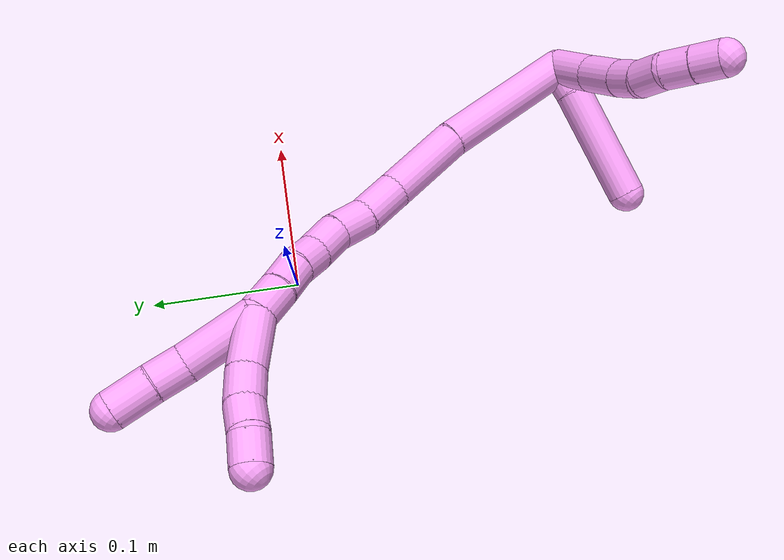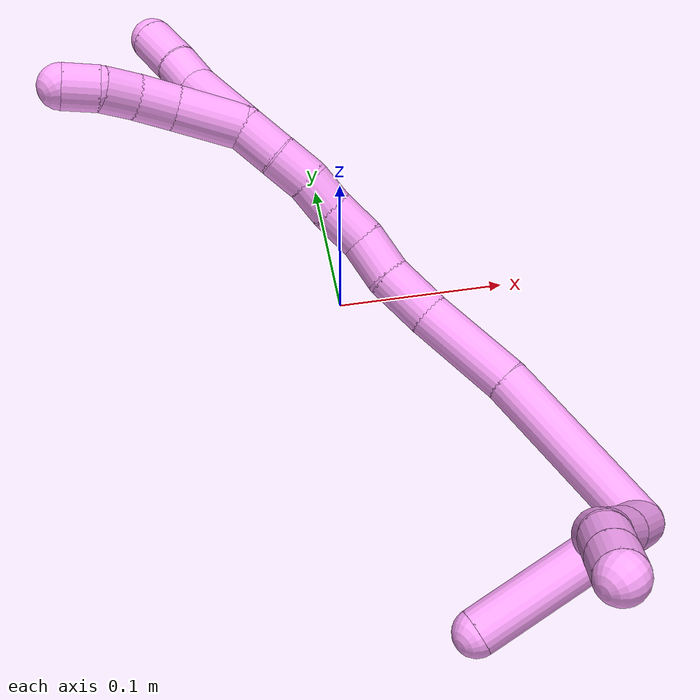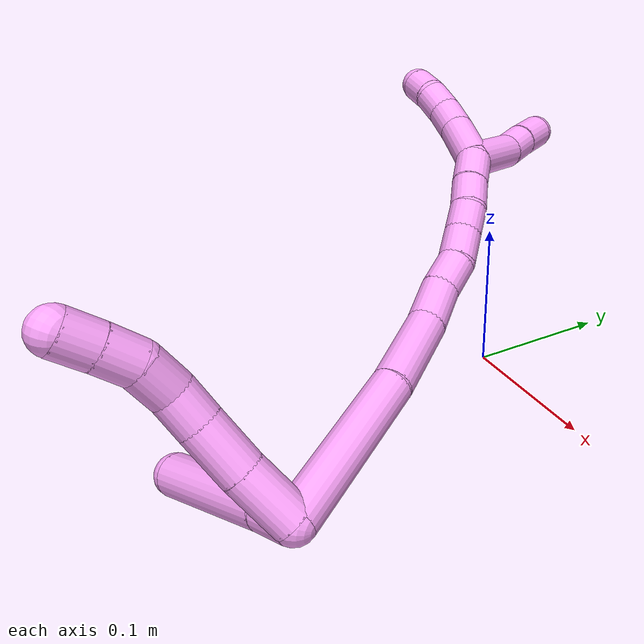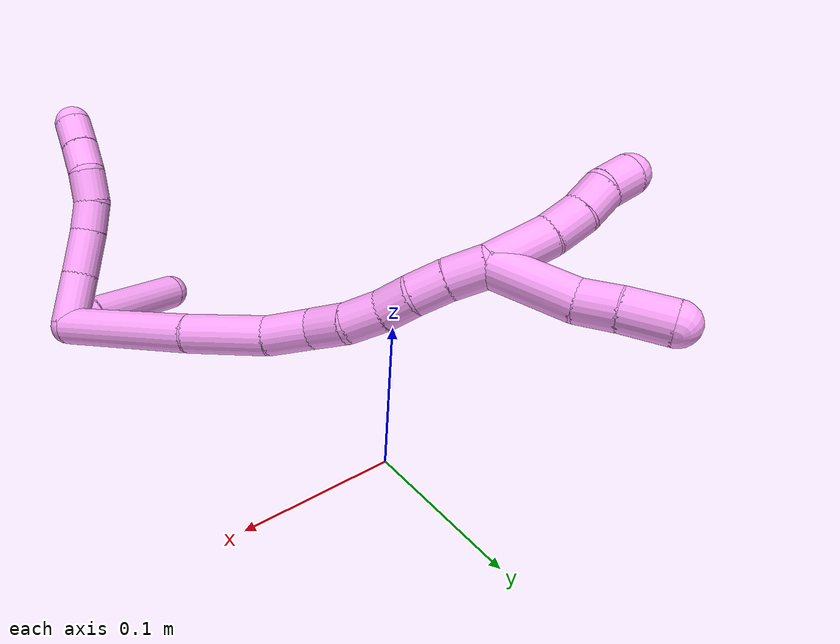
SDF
<sdf version="1.7">
 <world name="default">
  <model name="4">
   <static>0</static>
   <link name="4">
    <collision name="collision-cylinder-e_1_2_8">
     <pose>-0.007906 -0.008205 -0.013632 2.59979 -0.46118 -1.40352</pose>
     <geometry><cylinder><radius>0.0125</radius><length>0.035534</length></cylinder></geometry>
     <surface>
      <friction><ode><mu>1.16</mu><mu2>1.16</mu2><slip1>0</slip1><slip2>0</slip2></ode></friction>
      <contact><ode><kp>1e+06</kp><kd>1</kd><max_vel>0</max_vel><min_depth>0.001</min_depth></ode></contact>
     </surface>
    </collision>
    <visual name="visual-cylinder-e_1_2_8">
     <pose>-0.007906 -0.008205 -0.013632 2.59979 -0.46118 -1.40352</pose>
     <geometry><cylinder><radius>0.0125</radius><length>0.035534</length></cylinder></geometry>
     <material><ambient>1 0.65098 0.996078 1</ambient></material>
    </visual>
    <collision name="collision-cylinder-e_2_8_9">
     <pose>-0.023766 -0.023613 -0.038639 2.5771 -0.533567 -1.51155</pose>
     <geometry><cylinder><radius>0.0125</radius><length>0.031276</length></cylinder></geometry>
     <surface>
      <friction><ode><mu>1.16</mu><mu2>1.16</mu2><slip1>0</slip1><slip2>0</slip2></ode></friction>
      <contact><ode><kp>1e+06</kp><kd>1</kd><max_vel>0</max_vel><min_depth>0.001</min_depth></ode></contact>
     </surface>
    </collision>
    <visual name="visual-cylinder-e_2_8_9">
     <pose>-0.023766 -0.023613 -0.038639 2.5771 -0.533567 -1.51155</pose>
     <geometry><cylinder><radius>0.0125</radius><length>0.031276</length></cylinder></geometry>
     <material><ambient>1 0.65098 0.996078 1</ambient></material>
    </visual>
    <collision name="collision-cylinder-e_3_9_10">
     <pose>-0.037184 -0.036163 -0.056977 2.48671 -0.556771 -1.399</pose>
     <geometry><cylinder><radius>0.0125</radius><length>0.020681</length></cylinder></geometry>
     <surface>
      <friction><ode><mu>1.16</mu><mu2>1.16</mu2><slip1>0</slip1><slip2>0</slip2></ode></friction>
      <contact><ode><kp>1e+06</kp><kd>1</kd><max_vel>0</max_vel><min_depth>0.001</min_depth></ode></contact>
     </surface>
    </collision>
    <visual name="visual-cylinder-e_3_9_10">
     <pose>-0.037184 -0.036163 -0.056977 2.48671 -0.556771 -1.399</pose>
     <geometry><cylinder><radius>0.0125</radius><length>0.020681</length></cylinder></geometry>
     <material><ambient>1 0.65098 0.996078 1</ambient></material>
    </visual>
    <collision name="collision-cylinder-e_4_10_11">
     <pose>-0.047288 -0.049599 -0.069561 2.17808 -0.440183 -0.808618</pose>
     <geometry><cylinder><radius>0.0125</radius><length>0.021778</length></cylinder></geometry>
     <surface>
      <friction><ode><mu>1.16</mu><mu2>1.16</mu2><slip1>0</slip1><slip2>0</slip2></ode></friction>
      <contact><ode><kp>1e+06</kp><kd>1</kd><max_vel>0</max_vel><min_depth>0.001</min_depth></ode></contact>
     </surface>
    </collision>
    <visual name="visual-cylinder-e_4_10_11">
     <pose>-0.047288 -0.049599 -0.069561 2.17808 -0.440183 -0.808618</pose>
     <geometry><cylinder><radius>0.0125</radius><length>0.021778</length></cylinder></geometry>
     <material><ambient>1 0.65098 0.996078 1</ambient></material>
    </visual>
    <collision name="collision-cylinder-e_5_11_12">
     <pose>-0.05329 -0.065647 -0.081641 2.25252 -0.132131 -0.276031</pose>
     <geometry><cylinder><radius>0.0125</radius><length>0.020679</length></cylinder></geometry>
     <surface>
      <friction><ode><mu>1.16</mu><mu2>1.16</mu2><slip1>0</slip1><slip2>0</slip2></ode></friction>
      <contact><ode><kp>1e+06</kp><kd>1</kd><max_vel>0</max_vel><min_depth>0.001</min_depth></ode></contact>
     </surface>
    </collision>
    <visual name="visual-cylinder-e_5_11_12">
     <pose>-0.05329 -0.065647 -0.081641 2.25252 -0.132131 -0.276031</pose>
     <geometry><cylinder><radius>0.0125</radius><length>0.020679</length></cylinder></geometry>
     <material><ambient>1 0.65098 0.996078 1</ambient></material>
    </visual>
    <collision name="collision-cylinder-e_6_12_6">
     <pose>-0.055568 -0.081403 -0.094335 2.2454 -0.091416 -0.189731</pose>
     <geometry><cylinder><radius>0.0125</radius><length>0.020053</length></cylinder></geometry>
     <surface>
      <friction><ode><mu>1.16</mu><mu2>1.16</mu2><slip1>0</slip1><slip2>0</slip2></ode></friction>
      <contact><ode><kp>1e+06</kp><kd>1</kd><max_vel>0</max_vel><min_depth>0.001</min_depth></ode></contact>
     </surface>
    </collision>
    <visual name="visual-cylinder-e_6_12_6">
     <pose>-0.055568 -0.081403 -0.094335 2.2454 -0.091416 -0.189731</pose>
     <geometry><cylinder><radius>0.0125</radius><length>0.020053</length></cylinder></geometry>
     <material><ambient>1 0.65098 0.996078 1</ambient></material>
    </visual>
    <collision name="collision-cylinder-e_1_2_13">
     <pose>0.000893 0.002958 -0.009975 -2.85331 0.085622 -0.573964</pose>
     <geometry><cylinder><radius>0.0125</radius><length>0.020886</length></cylinder></geometry>
     <surface>
      <friction><ode><mu>1.16</mu><mu2>1.16</mu2><slip1>0</slip1><slip2>0</slip2></ode></friction>
      <contact><ode><kp>1e+06</kp><kd>1</kd><max_vel>0</max_vel><min_depth>0.001</min_depth></ode></contact>
     </surface>
    </collision>
    <visual name="visual-cylinder-e_1_2_13">
     <pose>0.000893 0.002958 -0.009975 -2.85331 0.085622 -0.573964</pose>
     <geometry><cylinder><radius>0.0125</radius><length>0.020886</length></cylinder></geometry>
     <material><ambient>1 0.65098 0.996078 1</ambient></material>
    </visual>
    <collision name="collision-cylinder-e_2_13_5">
     <pose>0.008292 0.020798 -0.05602 -2.75027 0.165229 -0.791489</pose>
     <geometry><cylinder><radius>0.0125</radius><length>0.079114</length></cylinder></geometry>
     <surface>
      <friction><ode><mu>1.16</mu><mu2>1.16</mu2><slip1>0</slip1><slip2>0</slip2></ode></friction>
      <contact><ode><kp>1e+06</kp><kd>1</kd><max_vel>0</max_vel><min_depth>0.001</min_depth></ode></contact>
     </surface>
    </collision>
    <visual name="visual-cylinder-e_2_13_5">
     <pose>0.008292 0.020798 -0.05602 -2.75027 0.165229 -0.791489</pose>
     <geometry><cylinder><radius>0.0125</radius><length>0.079114</length></cylinder></geometry>
     <material><ambient>1 0.65098 0.996078 1</ambient></material>
    </visual>
    <collision name="collision-cylinder-e_1_2_14">
     <pose>-0.0364 0.034097 0.000934 -1.54342 -0.817868 0.798079</pose>
     <geometry><cylinder><radius>0.0125</radius><length>0.099768</length></cylinder></geometry>
     <surface>
      <friction><ode><mu>1.16</mu><mu2>1.16</mu2><slip1>0</slip1><slip2>0</slip2></ode></friction>
      <contact><ode><kp>1e+06</kp><kd>1</kd><max_vel>0</max_vel><min_depth>0.001</min_depth></ode></contact>
     </surface>
    </collision>
    <visual name="visual-cylinder-e_1_2_14">
     <pose>-0.0364 0.034097 0.000934 -1.54342 -0.817868 0.798079</pose>
     <geometry><cylinder><radius>0.0125</radius><length>0.099768</length></cylinder></geometry>
     <material><ambient>1 0.65098 0.996078 1</ambient></material>
    </visual>
    <collision name="collision-cylinder-e_2_14_15">
     <pose>-0.092135 0.088033 -0.000631 -1.69604 -0.768601 0.859828</pose>
     <geometry><cylinder><radius>0.0125</radius><length>0.055632</length></cylinder></geometry>
     <surface>
      <friction><ode><mu>1.16</mu><mu2>1.16</mu2><slip1>0</slip1><slip2>0</slip2></ode></friction>
      <contact><ode><kp>1e+06</kp><kd>1</kd><max_vel>0</max_vel><min_depth>0.001</min_depth></ode></contact>
     </surface>
    </collision>
    <visual name="visual-cylinder-e_2_14_15">
     <pose>-0.092135 0.088033 -0.000631 -1.69604 -0.768601 0.859828</pose>
     <geometry><cylinder><radius>0.0125</radius><length>0.055632</length></cylinder></geometry>
     <material><ambient>1 0.65098 0.996078 1</ambient></material>
    </visual>
    <collision name="collision-cylinder-e_3_15_16">
     <pose>-0.123738 0.116854 -0.005342 -1.81246 -0.924711 1.13314</pose>
     <geometry><cylinder><radius>0.0125</radius><length>0.030725</length></cylinder></geometry>
     <surface>
      <friction><ode><mu>1.16</mu><mu2>1.16</mu2><slip1>0</slip1><slip2>0</slip2></ode></friction>
      <contact><ode><kp>1e+06</kp><kd>1</kd><max_vel>0</max_vel><min_depth>0.001</min_depth></ode></contact>
     </surface>
    </collision>
    <visual name="visual-cylinder-e_3_15_16">
     <pose>-0.123738 0.116854 -0.005342 -1.81246 -0.924711 1.13314</pose>
     <geometry><cylinder><radius>0.0125</radius><length>0.030725</length></cylinder></geometry>
     <material><ambient>1 0.65098 0.996078 1</ambient></material>
    </visual>
    <collision name="collision-cylinder-e_4_16_17">
     <pose>-0.146593 0.131945 -0.007215 -1.51503 -1.04678 0.999162</pose>
     <geometry><cylinder><radius>0.0125</radius><length>0.024462</length></cylinder></geometry>
     <surface>
      <friction><ode><mu>1.16</mu><mu2>1.16</mu2><slip1>0</slip1><slip2>0</slip2></ode></friction>
      <contact><ode><kp>1e+06</kp><kd>1</kd><max_vel>0</max_vel><min_depth>0.001</min_depth></ode></contact>
     </surface>
    </collision>
    <visual name="visual-cylinder-e_4_16_17">
     <pose>-0.146593 0.131945 -0.007215 -1.51503 -1.04678 0.999162</pose>
     <geometry><cylinder><radius>0.0125</radius><length>0.024462</length></cylinder></geometry>
     <material><ambient>1 0.65098 0.996078 1</ambient></material>
    </visual>
    <collision name="collision-cylinder-e_5_17_18">
     <pose>-0.167403 0.143379 -0.009631 -2.04872 -1.04025 1.51072</pose>
     <geometry><cylinder><radius>0.0125</radius><length>0.023697</length></cylinder></geometry>
     <surface>
      <friction><ode><mu>1.16</mu><mu2>1.16</mu2><slip1>0</slip1><slip2>0</slip2></ode></friction>
      <contact><ode><kp>1e+06</kp><kd>1</kd><max_vel>0</max_vel><min_depth>0.001</min_depth></ode></contact>
     </surface>
    </collision>
    <visual name="visual-cylinder-e_5_17_18">
     <pose>-0.167403 0.143379 -0.009631 -2.04872 -1.04025 1.51072</pose>
     <geometry><cylinder><radius>0.0125</radius><length>0.023697</length></cylinder></geometry>
     <material><ambient>1 0.65098 0.996078 1</ambient></material>
    </visual>
    <collision name="collision-cylinder-e_6_18_19">
     <pose>-0.18703 0.151908 -0.014383 -2.12732 -1.18917 1.766</pose>
     <geometry><cylinder><radius>0.0125</radius><length>0.020272</length></cylinder></geometry>
     <surface>
      <friction><ode><mu>1.16</mu><mu2>1.16</mu2><slip1>0</slip1><slip2>0</slip2></ode></friction>
      <contact><ode><kp>1e+06</kp><kd>1</kd><max_vel>0</max_vel><min_depth>0.001</min_depth></ode></contact>
     </surface>
    </collision>
    <visual name="visual-cylinder-e_6_18_19">
     <pose>-0.18703 0.151908 -0.014383 -2.12732 -1.18917 1.766</pose>
     <geometry><cylinder><radius>0.0125</radius><length>0.020272</length></cylinder></geometry>
     <material><ambient>1 0.65098 0.996078 1</ambient></material>
    </visual>
    <collision name="collision-cylinder-e_7_19_20">
     <pose>-0.205562 0.159599 -0.020111 -2.26493 -1.00178 1.7254</pose>
     <geometry><cylinder><radius>0.0125</radius><length>0.021665</length></cylinder></geometry>
     <surface>
      <friction><ode><mu>1.16</mu><mu2>1.16</mu2><slip1>0</slip1><slip2>0</slip2></ode></friction>
      <contact><ode><kp>1e+06</kp><kd>1</kd><max_vel>0</max_vel><min_depth>0.001</min_depth></ode></contact>
     </surface>
    </collision>
    <visual name="visual-cylinder-e_7_19_20">
     <pose>-0.205562 0.159599 -0.020111 -2.26493 -1.00178 1.7254</pose>
     <geometry><cylinder><radius>0.0125</radius><length>0.021665</length></cylinder></geometry>
     <material><ambient>1 0.65098 0.996078 1</ambient></material>
    </visual>
    <collision name="collision-cylinder-e_8_20_1">
     <pose>-0.224472 0.169875 -0.027323 -2.11183 -0.966585 1.49567</pose>
     <geometry><cylinder><radius>0.0125</radius><length>0.023779</length></cylinder></geometry>
     <surface>
      <friction><ode><mu>1.16</mu><mu2>1.16</mu2><slip1>0</slip1><slip2>0</slip2></ode></friction>
      <contact><ode><kp>1e+06</kp><kd>1</kd><max_vel>0</max_vel><min_depth>0.001</min_depth></ode></contact>
     </surface>
    </collision>
    <visual name="visual-cylinder-e_8_20_1">
     <pose>-0.224472 0.169875 -0.027323 -2.11183 -0.966585 1.49567</pose>
     <geometry><cylinder><radius>0.0125</radius><length>0.023779</length></cylinder></geometry>
     <material><ambient>1 0.65098 0.996078 1</ambient></material>
    </visual>
    <collision name="collision-cylinder-e_1_1_21">
     <pose>-0.24529 0.18401 -0.043493 -2.55994 -0.628236 1.65265</pose>
     <geometry><cylinder><radius>0.0125</radius><length>0.037546</length></cylinder></geometry>
     <surface>
      <friction><ode><mu>1.16</mu><mu2>1.16</mu2><slip1>0</slip1><slip2>0</slip2></ode></friction>
      <contact><ode><kp>1e+06</kp><kd>1</kd><max_vel>0</max_vel><min_depth>0.001</min_depth></ode></contact>
     </surface>
    </collision>
    <visual name="visual-cylinder-e_1_1_21">
     <pose>-0.24529 0.18401 -0.043493 -2.55994 -0.628236 1.65265</pose>
     <geometry><cylinder><radius>0.0125</radius><length>0.037546</length></cylinder></geometry>
     <material><ambient>1 0.65098 0.996078 1</ambient></material>
    </visual>
    <collision name="collision-cylinder-e_2_21_22">
     <pose>-0.262924 0.195733 -0.064462 -2.75411 -0.635942 2.06648</pose>
     <geometry><cylinder><radius>0.0125</radius><length>0.022227</length></cylinder></geometry>
     <surface>
      <friction><ode><mu>1.16</mu><mu2>1.16</mu2><slip1>0</slip1><slip2>0</slip2></ode></friction>
      <contact><ode><kp>1e+06</kp><kd>1</kd><max_vel>0</max_vel><min_depth>0.001</min_depth></ode></contact>
     </surface>
    </collision>
    <visual name="visual-cylinder-e_2_21_22">
     <pose>-0.262924 0.195733 -0.064462 -2.75411 -0.635942 2.06648</pose>
     <geometry><cylinder><radius>0.0125</radius><length>0.022227</length></cylinder></geometry>
     <material><ambient>1 0.65098 0.996078 1</ambient></material>
    </visual>
    <collision name="collision-cylinder-e_3_22_23">
     <pose>-0.27503 0.200501 -0.080987 -2.97469 -0.582153 2.59706</pose>
     <geometry><cylinder><radius>0.0125</radius><length>0.020026</length></cylinder></geometry>
     <surface>
      <friction><ode><mu>1.16</mu><mu2>1.16</mu2><slip1>0</slip1><slip2>0</slip2></ode></friction>
      <contact><ode><kp>1e+06</kp><kd>1</kd><max_vel>0</max_vel><min_depth>0.001</min_depth></ode></contact>
     </surface>
    </collision>
    <visual name="visual-cylinder-e_3_22_23">
     <pose>-0.27503 0.200501 -0.080987 -2.97469 -0.582153 2.59706</pose>
     <geometry><cylinder><radius>0.0125</radius><length>0.020026</length></cylinder></geometry>
     <material><ambient>1 0.65098 0.996078 1</ambient></material>
    </visual>
    <collision name="collision-cylinder-e_4_23_4">
     <pose>-0.284632 0.205984 -0.09751 -2.68212 -0.417584 1.47223</pose>
     <geometry><cylinder><radius>0.0125</radius><length>0.0202</length></cylinder></geometry>
     <surface>
      <friction><ode><mu>1.16</mu><mu2>1.16</mu2><slip1>0</slip1><slip2>0</slip2></ode></friction>
      <contact><ode><kp>1e+06</kp><kd>1</kd><max_vel>0</max_vel><min_depth>0.001</min_depth></ode></contact>
     </surface>
    </collision>
    <visual name="visual-cylinder-e_4_23_4">
     <pose>-0.284632 0.205984 -0.09751 -2.68212 -0.417584 1.47223</pose>
     <geometry><cylinder><radius>0.0125</radius><length>0.0202</length></cylinder></geometry>
     <material><ambient>1 0.65098 0.996078 1</ambient></material>
    </visual>
    <collision name="collision-cylinder-e_1_1_24">
     <pose>-0.245382 0.197522 -0.026862 -1.39246 -0.464418 0.390292</pose>
     <geometry><cylinder><radius>0.0125</radius><length>0.04968</length></cylinder></geometry>
     <surface>
      <friction><ode><mu>1.16</mu><mu2>1.16</mu2><slip1>0</slip1><slip2>0</slip2></ode></friction>
      <contact><ode><kp>1e+06</kp><kd>1</kd><max_vel>0</max_vel><min_depth>0.001</min_depth></ode></contact>
     </surface>
    </collision>
    <visual name="visual-cylinder-e_1_1_24">
     <pose>-0.245382 0.197522 -0.026862 -1.39246 -0.464418 0.390292</pose>
     <geometry><cylinder><radius>0.0125</radius><length>0.04968</length></cylinder></geometry>
     <material><ambient>1 0.65098 0.996078 1</ambient></material>
    </visual>
    <collision name="collision-cylinder-e_2_24_25">
     <pose>-0.263764 0.227888 -0.021463 -1.40099 -0.698927 0.596201</pose>
     <geometry><cylinder><radius>0.0125</radius><length>0.022555</length></cylinder></geometry>
     <surface>
      <friction><ode><mu>1.16</mu><mu2>1.16</mu2><slip1>0</slip1><slip2>0</slip2></ode></friction>
      <contact><ode><kp>1e+06</kp><kd>1</kd><max_vel>0</max_vel><min_depth>0.001</min_depth></ode></contact>
     </surface>
    </collision>
    <visual name="visual-cylinder-e_2_24_25">
     <pose>-0.263764 0.227888 -0.021463 -1.40099 -0.698927 0.596201</pose>
     <geometry><cylinder><radius>0.0125</radius><length>0.022555</length></cylinder></geometry>
     <material><ambient>1 0.65098 0.996078 1</ambient></material>
    </visual>
    <collision name="collision-cylinder-e_3_25_3">
     <pose>-0.279058 0.247595 -0.018357 -1.42468 -0.617488 0.537554</pose>
     <geometry><cylinder><radius>0.0125</radius><length>0.027765</length></cylinder></geometry>
     <surface>
      <friction><ode><mu>1.16</mu><mu2>1.16</mu2><slip1>0</slip1><slip2>0</slip2></ode></friction>
      <contact><ode><kp>1e+06</kp><kd>1</kd><max_vel>0</max_vel><min_depth>0.001</min_depth></ode></contact>
     </surface>
    </collision>
    <visual name="visual-cylinder-e_3_25_3">
     <pose>-0.279058 0.247595 -0.018357 -1.42468 -0.617488 0.537554</pose>
     <geometry><cylinder><radius>0.0125</radius><length>0.027765</length></cylinder></geometry>
     <material><ambient>1 0.65098 0.996078 1</ambient></material>
    </visual>
    <collision name="collision-sphere-3">
     <pose>-0.287096 0.258793 -0.016709 0 -0 0</pose>
     <geometry><sphere><radius>0.0125</radius></sphere></geometry>
     <surface>
      <friction><ode><mu>1.16</mu><mu2>1.16</mu2><slip1>0</slip1><slip2>0</slip2></ode></friction>
      <contact><ode><kp>1e+06</kp><kd>1</kd><max_vel>0</max_vel><min_depth>0.001</min_depth></ode></contact>
     </surface>
    </collision>
    <visual name="visual-sphere-3">
     <pose>-0.287096 0.258793 -0.016709 0 -0 0</pose>
     <geometry><sphere><radius>0.0125</radius></sphere></geometry>
     <material><ambient>1 0.65098 0.996078 1</ambient></material>
    </visual>
    <collision name="collision-sphere-25">
     <pose>-0.27102 0.236397 -0.020005 0 -0 0</pose>
     <geometry><sphere><radius>0.0125</radius></sphere></geometry>
     <surface>
      <friction><ode><mu>1.16</mu><mu2>1.16</mu2><slip1>0</slip1><slip2>0</slip2></ode></friction>
      <contact><ode><kp>1e+06</kp><kd>1</kd><max_vel>0</max_vel><min_depth>0.001</min_depth></ode></contact>
     </surface>
    </collision>
    <visual name="visual-sphere-25">
     <pose>-0.27102 0.236397 -0.020005 0 -0 0</pose>
     <geometry><sphere><radius>0.0125</radius></sphere></geometry>
     <material><ambient>1 0.65098 0.996078 1</ambient></material>
    </visual>
    <collision name="collision-sphere-24">
     <pose>-0.256508 0.219379 -0.022922 0 -0 0</pose>
     <geometry><sphere><radius>0.0125</radius></sphere></geometry>
     <surface>
      <friction><ode><mu>1.16</mu><mu2>1.16</mu2><slip1>0</slip1><slip2>0</slip2></ode></friction>
      <contact><ode><kp>1e+06</kp><kd>1</kd><max_vel>0</max_vel><min_depth>0.001</min_depth></ode></contact>
     </surface>
    </collision>
    <visual name="visual-sphere-24">
     <pose>-0.256508 0.219379 -0.022922 0 -0 0</pose>
     <geometry><sphere><radius>0.0125</radius></sphere></geometry>
     <material><ambient>1 0.65098 0.996078 1</ambient></material>
    </visual>
    <collision name="collision-sphere-4">
     <pose>-0.288728 0.210079 -0.105785 0 -0 0</pose>
     <geometry><sphere><radius>0.0125</radius></sphere></geometry>
     <surface>
      <friction><ode><mu>1.16</mu><mu2>1.16</mu2><slip1>0</slip1><slip2>0</slip2></ode></friction>
      <contact><ode><kp>1e+06</kp><kd>1</kd><max_vel>0</max_vel><min_depth>0.001</min_depth></ode></contact>
     </surface>
    </collision>
    <visual name="visual-sphere-4">
     <pose>-0.288728 0.210079 -0.105785 0 -0 0</pose>
     <geometry><sphere><radius>0.0125</radius></sphere></geometry>
     <material><ambient>1 0.65098 0.996078 1</ambient></material>
    </visual>
    <collision name="collision-sphere-23">
     <pose>-0.280535 0.20189 -0.089235 0 -0 0</pose>
     <geometry><sphere><radius>0.0125</radius></sphere></geometry>
     <surface>
      <friction><ode><mu>1.16</mu><mu2>1.16</mu2><slip1>0</slip1><slip2>0</slip2></ode></friction>
      <contact><ode><kp>1e+06</kp><kd>1</kd><max_vel>0</max_vel><min_depth>0.001</min_depth></ode></contact>
     </surface>
    </collision>
    <visual name="visual-sphere-23">
     <pose>-0.280535 0.20189 -0.089235 0 -0 0</pose>
     <geometry><sphere><radius>0.0125</radius></sphere></geometry>
     <material><ambient>1 0.65098 0.996078 1</ambient></material>
    </visual>
    <collision name="collision-sphere-22">
     <pose>-0.269524 0.199111 -0.07274 0 -0 0</pose>
     <geometry><sphere><radius>0.0125</radius></sphere></geometry>
     <surface>
      <friction><ode><mu>1.16</mu><mu2>1.16</mu2><slip1>0</slip1><slip2>0</slip2></ode></friction>
      <contact><ode><kp>1e+06</kp><kd>1</kd><max_vel>0</max_vel><min_depth>0.001</min_depth></ode></contact>
     </surface>
    </collision>
    <visual name="visual-sphere-22">
     <pose>-0.269524 0.199111 -0.07274 0 -0 0</pose>
     <geometry><sphere><radius>0.0125</radius></sphere></geometry>
     <material><ambient>1 0.65098 0.996078 1</ambient></material>
    </visual>
    <collision name="collision-sphere-21">
     <pose>-0.256323 0.192354 -0.056184 0 -0 0</pose>
     <geometry><sphere><radius>0.0125</radius></sphere></geometry>
     <surface>
      <friction><ode><mu>1.16</mu><mu2>1.16</mu2><slip1>0</slip1><slip2>0</slip2></ode></friction>
      <contact><ode><kp>1e+06</kp><kd>1</kd><max_vel>0</max_vel><min_depth>0.001</min_depth></ode></contact>
     </surface>
    </collision>
    <visual name="visual-sphere-21">
     <pose>-0.256323 0.192354 -0.056184 0 -0 0</pose>
     <geometry><sphere><radius>0.0125</radius></sphere></geometry>
     <material><ambient>1 0.65098 0.996078 1</ambient></material>
    </visual>
    <collision name="collision-sphere-1">
     <pose>-0.234256 0.175665 -0.030802 0 -0 0</pose>
     <geometry><sphere><radius>0.0125</radius></sphere></geometry>
     <surface>
      <friction><ode><mu>1.16</mu><mu2>1.16</mu2><slip1>0</slip1><slip2>0</slip2></ode></friction>
      <contact><ode><kp>1e+06</kp><kd>1</kd><max_vel>0</max_vel><min_depth>0.001</min_depth></ode></contact>
     </surface>
    </collision>
    <visual name="visual-sphere-1">
     <pose>-0.234256 0.175665 -0.030802 0 -0 0</pose>
     <geometry><sphere><radius>0.0125</radius></sphere></geometry>
     <material><ambient>1 0.65098 0.996078 1</ambient></material>
    </visual>
    <collision name="collision-sphere-12">
     <pose>-0.054652 -0.073605 -0.088099 0 -0 0</pose>
     <geometry><sphere><radius>0.0125</radius></sphere></geometry>
     <surface>
      <friction><ode><mu>1.16</mu><mu2>1.16</mu2><slip1>0</slip1><slip2>0</slip2></ode></friction>
      <contact><ode><kp>1e+06</kp><kd>1</kd><max_vel>0</max_vel><min_depth>0.001</min_depth></ode></contact>
     </surface>
    </collision>
    <visual name="visual-sphere-12">
     <pose>-0.054652 -0.073605 -0.088099 0 -0 0</pose>
     <geometry><sphere><radius>0.0125</radius></sphere></geometry>
     <material><ambient>1 0.65098 0.996078 1</ambient></material>
    </visual>
    <collision name="collision-sphere-11">
     <pose>-0.051928 -0.057689 -0.075182 0 -0 0</pose>
     <geometry><sphere><radius>0.0125</radius></sphere></geometry>
     <surface>
      <friction><ode><mu>1.16</mu><mu2>1.16</mu2><slip1>0</slip1><slip2>0</slip2></ode></friction>
      <contact><ode><kp>1e+06</kp><kd>1</kd><max_vel>0</max_vel><min_depth>0.001</min_depth></ode></contact>
     </surface>
    </collision>
    <visual name="visual-sphere-11">
     <pose>-0.051928 -0.057689 -0.075182 0 -0 0</pose>
     <geometry><sphere><radius>0.0125</radius></sphere></geometry>
     <material><ambient>1 0.65098 0.996078 1</ambient></material>
    </visual>
    <collision name="collision-sphere-10">
     <pose>-0.042648 -0.04151 -0.06394 0 -0 0</pose>
     <geometry><sphere><radius>0.0125</radius></sphere></geometry>
     <surface>
      <friction><ode><mu>1.16</mu><mu2>1.16</mu2><slip1>0</slip1><slip2>0</slip2></ode></friction>
      <contact><ode><kp>1e+06</kp><kd>1</kd><max_vel>0</max_vel><min_depth>0.001</min_depth></ode></contact>
     </surface>
    </collision>
    <visual name="visual-sphere-10">
     <pose>-0.042648 -0.04151 -0.06394 0 -0 0</pose>
     <geometry><sphere><radius>0.0125</radius></sphere></geometry>
     <material><ambient>1 0.65098 0.996078 1</ambient></material>
    </visual>
    <collision name="collision-sphere-9">
     <pose>-0.03172 -0.030816 -0.050015 0 -0 0</pose>
     <geometry><sphere><radius>0.0125</radius></sphere></geometry>
     <surface>
      <friction><ode><mu>1.16</mu><mu2>1.16</mu2><slip1>0</slip1><slip2>0</slip2></ode></friction>
      <contact><ode><kp>1e+06</kp><kd>1</kd><max_vel>0</max_vel><min_depth>0.001</min_depth></ode></contact>
     </surface>
    </collision>
    <visual name="visual-sphere-9">
     <pose>-0.03172 -0.030816 -0.050015 0 -0 0</pose>
     <geometry><sphere><radius>0.0125</radius></sphere></geometry>
     <material><ambient>1 0.65098 0.996078 1</ambient></material>
    </visual>
    <collision name="collision-sphere-2">
     <geometry><sphere><radius>0.0125</radius></sphere></geometry>
     <surface>
      <friction><ode><mu>1.16</mu><mu2>1.16</mu2><slip1>0</slip1><slip2>0</slip2></ode></friction>
      <contact><ode><kp>1e+06</kp><kd>1</kd><max_vel>0</max_vel><min_depth>0.001</min_depth></ode></contact>
     </surface>
    </collision>
    <visual name="visual-sphere-2">
     <geometry><sphere><radius>0.0125</radius></sphere></geometry>
     <material><ambient>1 0.65098 0.996078 1</ambient></material>
    </visual>
    <collision name="collision-sphere-19">
     <pose>-0.196437 0.155113 -0.016377 0 -0 0</pose>
     <geometry><sphere><radius>0.0125</radius></sphere></geometry>
     <surface>
      <friction><ode><mu>1.16</mu><mu2>1.16</mu2><slip1>0</slip1><slip2>0</slip2></ode></friction>
      <contact><ode><kp>1e+06</kp><kd>1</kd><max_vel>0</max_vel><min_depth>0.001</min_depth></ode></contact>
     </surface>
    </collision>
    <visual name="visual-sphere-19">
     <pose>-0.196437 0.155113 -0.016377 0 -0 0</pose>
     <geometry><sphere><radius>0.0125</radius></sphere></geometry>
     <material><ambient>1 0.65098 0.996078 1</ambient></material>
    </visual>
    <collision name="collision-sphere-8">
     <pose>-0.015813 -0.01641 -0.027264 0 -0 0</pose>
     <geometry><sphere><radius>0.0125</radius></sphere></geometry>
     <surface>
      <friction><ode><mu>1.16</mu><mu2>1.16</mu2><slip1>0</slip1><slip2>0</slip2></ode></friction>
      <contact><ode><kp>1e+06</kp><kd>1</kd><max_vel>0</max_vel><min_depth>0.001</min_depth></ode></contact>
     </surface>
    </collision>
    <visual name="visual-sphere-8">
     <pose>-0.015813 -0.01641 -0.027264 0 -0 0</pose>
     <geometry><sphere><radius>0.0125</radius></sphere></geometry>
     <material><ambient>1 0.65098 0.996078 1</ambient></material>
    </visual>
    <collision name="collision-sphere-6">
     <pose>-0.056483 -0.089201 -0.100572 0 -0 0</pose>
     <geometry><sphere><radius>0.0125</radius></sphere></geometry>
     <surface>
      <friction><ode><mu>1.16</mu><mu2>1.16</mu2><slip1>0</slip1><slip2>0</slip2></ode></friction>
      <contact><ode><kp>1e+06</kp><kd>1</kd><max_vel>0</max_vel><min_depth>0.001</min_depth></ode></contact>
     </surface>
    </collision>
    <visual name="visual-sphere-6">
     <pose>-0.056483 -0.089201 -0.100572 0 -0 0</pose>
     <geometry><sphere><radius>0.0125</radius></sphere></geometry>
     <material><ambient>1 0.65098 0.996078 1</ambient></material>
    </visual>
    <collision name="collision-sphere-13">
     <pose>0.001786 0.005916 -0.019951 0 -0 0</pose>
     <geometry><sphere><radius>0.0125</radius></sphere></geometry>
     <surface>
      <friction><ode><mu>1.16</mu><mu2>1.16</mu2><slip1>0</slip1><slip2>0</slip2></ode></friction>
      <contact><ode><kp>1e+06</kp><kd>1</kd><max_vel>0</max_vel><min_depth>0.001</min_depth></ode></contact>
     </surface>
    </collision>
    <visual name="visual-sphere-13">
     <pose>0.001786 0.005916 -0.019951 0 -0 0</pose>
     <geometry><sphere><radius>0.0125</radius></sphere></geometry>
     <material><ambient>1 0.65098 0.996078 1</ambient></material>
    </visual>
    <collision name="collision-sphere-5">
     <pose>0.014799 0.03568 -0.092088 0 -0 0</pose>
     <geometry><sphere><radius>0.0125</radius></sphere></geometry>
     <surface>
      <friction><ode><mu>1.16</mu><mu2>1.16</mu2><slip1>0</slip1><slip2>0</slip2></ode></friction>
      <contact><ode><kp>1e+06</kp><kd>1</kd><max_vel>0</max_vel><min_depth>0.001</min_depth></ode></contact>
     </surface>
    </collision>
    <visual name="visual-sphere-5">
     <pose>0.014799 0.03568 -0.092088 0 -0 0</pose>
     <geometry><sphere><radius>0.0125</radius></sphere></geometry>
     <material><ambient>1 0.65098 0.996078 1</ambient></material>
    </visual>
    <collision name="collision-sphere-14">
     <pose>-0.0728 0.068194 0.001867 0 -0 0</pose>
     <geometry><sphere><radius>0.0125</radius></sphere></geometry>
     <surface>
      <friction><ode><mu>1.16</mu><mu2>1.16</mu2><slip1>0</slip1><slip2>0</slip2></ode></friction>
      <contact><ode><kp>1e+06</kp><kd>1</kd><max_vel>0</max_vel><min_depth>0.001</min_depth></ode></contact>
     </surface>
    </collision>
    <visual name="visual-sphere-14">
     <pose>-0.0728 0.068194 0.001867 0 -0 0</pose>
     <geometry><sphere><radius>0.0125</radius></sphere></geometry>
     <material><ambient>1 0.65098 0.996078 1</ambient></material>
    </visual>
    <collision name="collision-sphere-15">
     <pose>-0.111471 0.107873 -0.003129 0 -0 0</pose>
     <geometry><sphere><radius>0.0125</radius></sphere></geometry>
     <surface>
      <friction><ode><mu>1.16</mu><mu2>1.16</mu2><slip1>0</slip1><slip2>0</slip2></ode></friction>
      <contact><ode><kp>1e+06</kp><kd>1</kd><max_vel>0</max_vel><min_depth>0.001</min_depth></ode></contact>
     </surface>
    </collision>
    <visual name="visual-sphere-15">
     <pose>-0.111471 0.107873 -0.003129 0 -0 0</pose>
     <geometry><sphere><radius>0.0125</radius></sphere></geometry>
     <material><ambient>1 0.65098 0.996078 1</ambient></material>
    </visual>
    <collision name="collision-sphere-16">
     <pose>-0.136004 0.125835 -0.007556 0 -0 0</pose>
     <geometry><sphere><radius>0.0125</radius></sphere></geometry>
     <surface>
      <friction><ode><mu>1.16</mu><mu2>1.16</mu2><slip1>0</slip1><slip2>0</slip2></ode></friction>
      <contact><ode><kp>1e+06</kp><kd>1</kd><max_vel>0</max_vel><min_depth>0.001</min_depth></ode></contact>
     </surface>
    </collision>
    <visual name="visual-sphere-16">
     <pose>-0.136004 0.125835 -0.007556 0 -0 0</pose>
     <geometry><sphere><radius>0.0125</radius></sphere></geometry>
     <material><ambient>1 0.65098 0.996078 1</ambient></material>
    </visual>
    <collision name="collision-sphere-17">
     <pose>-0.157183 0.138055 -0.006874 0 -0 0</pose>
     <geometry><sphere><radius>0.0125</radius></sphere></geometry>
     <surface>
      <friction><ode><mu>1.16</mu><mu2>1.16</mu2><slip1>0</slip1><slip2>0</slip2></ode></friction>
      <contact><ode><kp>1e+06</kp><kd>1</kd><max_vel>0</max_vel><min_depth>0.001</min_depth></ode></contact>
     </surface>
    </collision>
    <visual name="visual-sphere-17">
     <pose>-0.157183 0.138055 -0.006874 0 -0 0</pose>
     <geometry><sphere><radius>0.0125</radius></sphere></geometry>
     <material><ambient>1 0.65098 0.996078 1</ambient></material>
    </visual>
    <collision name="collision-sphere-18">
     <pose>-0.177623 0.148702 -0.012389 0 -0 0</pose>
     <geometry><sphere><radius>0.0125</radius></sphere></geometry>
     <surface>
      <friction><ode><mu>1.16</mu><mu2>1.16</mu2><slip1>0</slip1><slip2>0</slip2></ode></friction>
      <contact><ode><kp>1e+06</kp><kd>1</kd><max_vel>0</max_vel><min_depth>0.001</min_depth></ode></contact>
     </surface>
    </collision>
    <visual name="visual-sphere-18">
     <pose>-0.177623 0.148702 -0.012389 0 -0 0</pose>
     <geometry><sphere><radius>0.0125</radius></sphere></geometry>
     <material><ambient>1 0.65098 0.996078 1</ambient></material>
    </visual>
    <collision name="collision-sphere-20">
     <pose>-0.214688 0.164085 -0.023844 0 -0 0</pose>
     <geometry><sphere><radius>0.0125</radius></sphere></geometry>
     <surface>
      <friction><ode><mu>1.16</mu><mu2>1.16</mu2><slip1>0</slip1><slip2>0</slip2></ode></friction>
      <contact><ode><kp>1e+06</kp><kd>1</kd><max_vel>0</max_vel><min_depth>0.001</min_depth></ode></contact>
     </surface>
    </collision>
    <visual name="visual-sphere-20">
     <pose>-0.214688 0.164085 -0.023844 0 -0 0</pose>
     <geometry><sphere><radius>0.0125</radius></sphere></geometry>
     <material><ambient>1 0.65098 0.996078 1</ambient></material>
    </visual>
    <inertial>
     <pose>-0.120344 0.088285 -0.031306 0 -0 0</pose>
     <mass>0.75</mass>
     <inertia><ixx>9.8e-05</ixx><ixy>0</ixy><ixz>0</ixz><iyy>9.4e-05</iyy><iyz>0</iyz><izz>-2.8e-05</izz></inertia>
    </inertial>
   </link>
   <pose>0.120308 -0.19994 0.034459 -1.7463 0.970509 -1.13303</pose>
  </model>
 </world>
</sdf>
